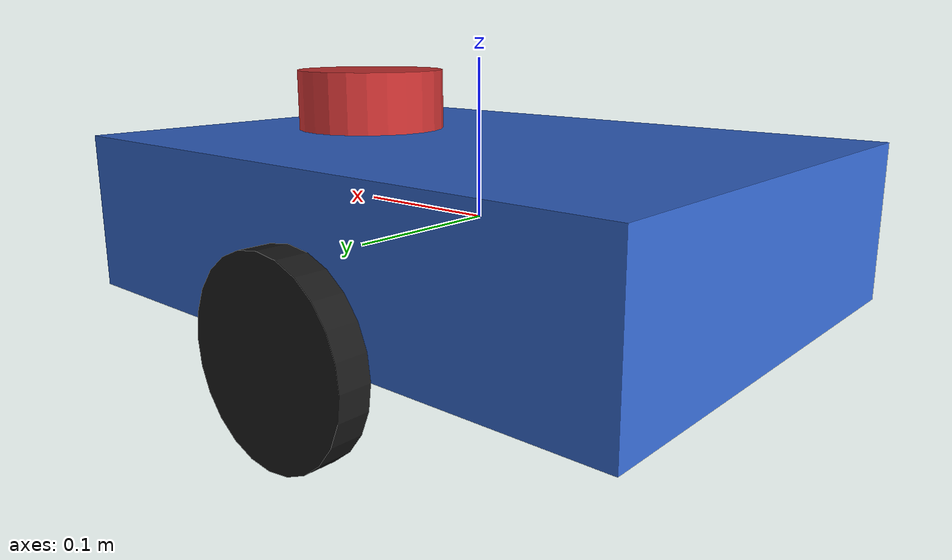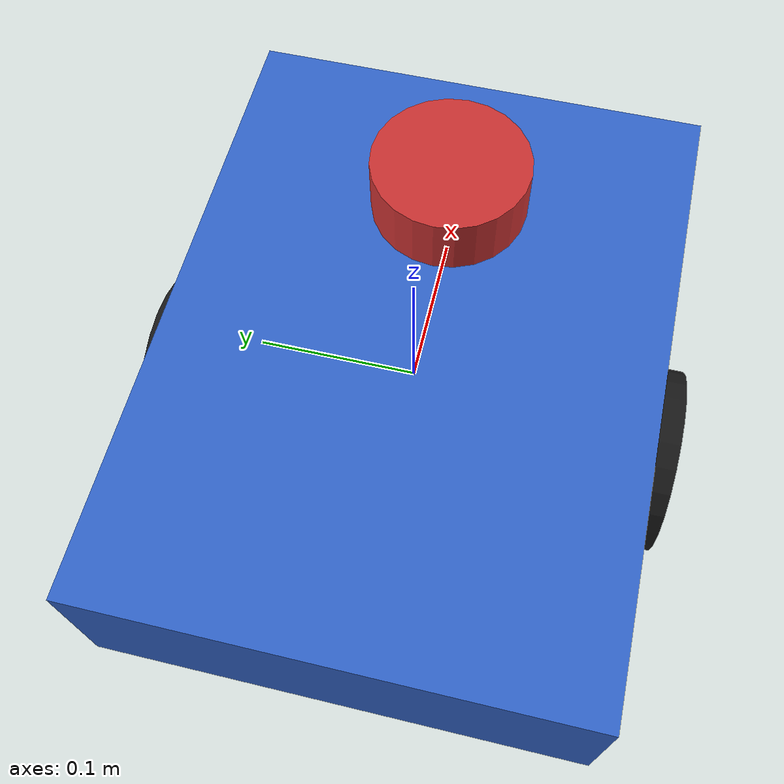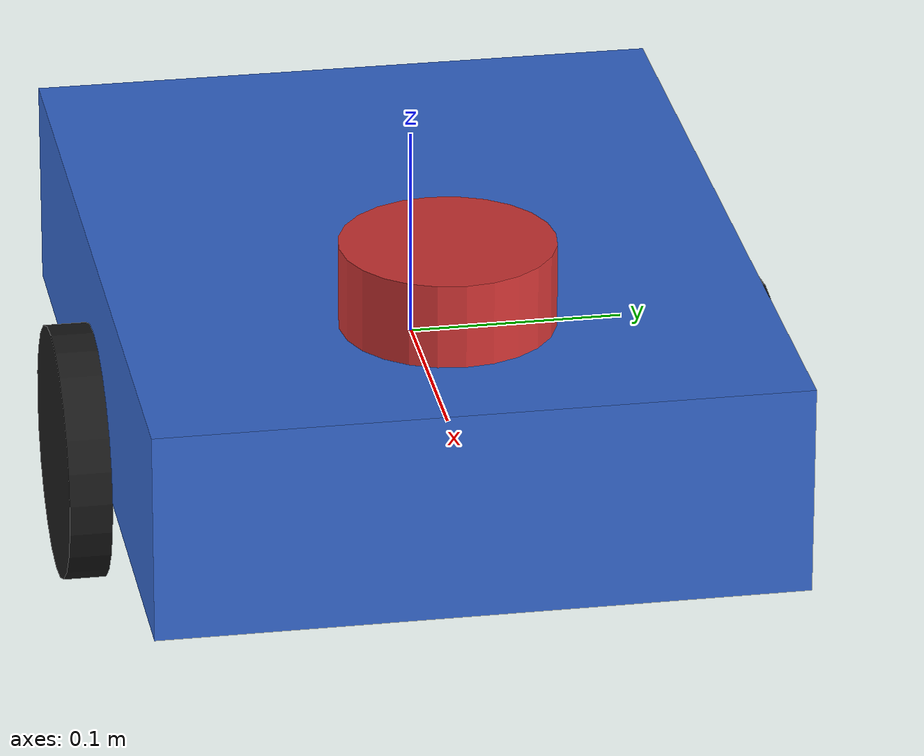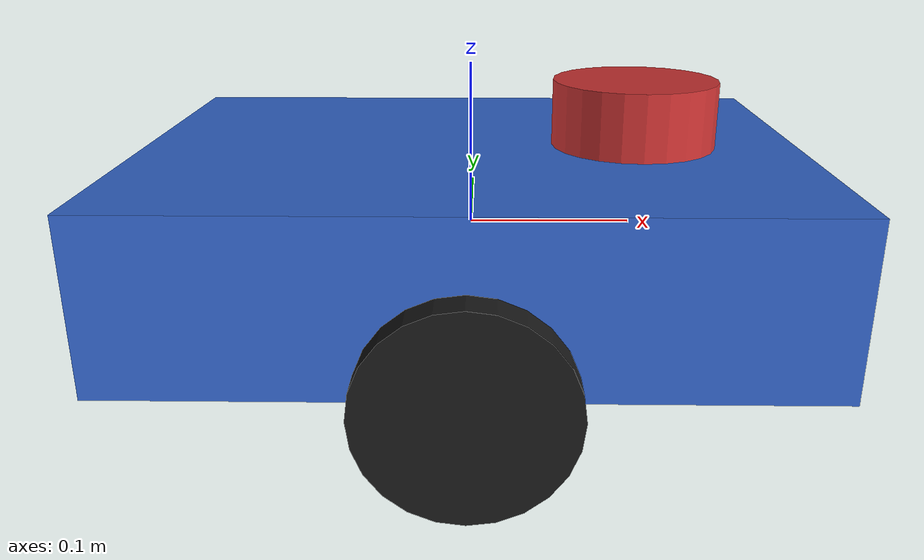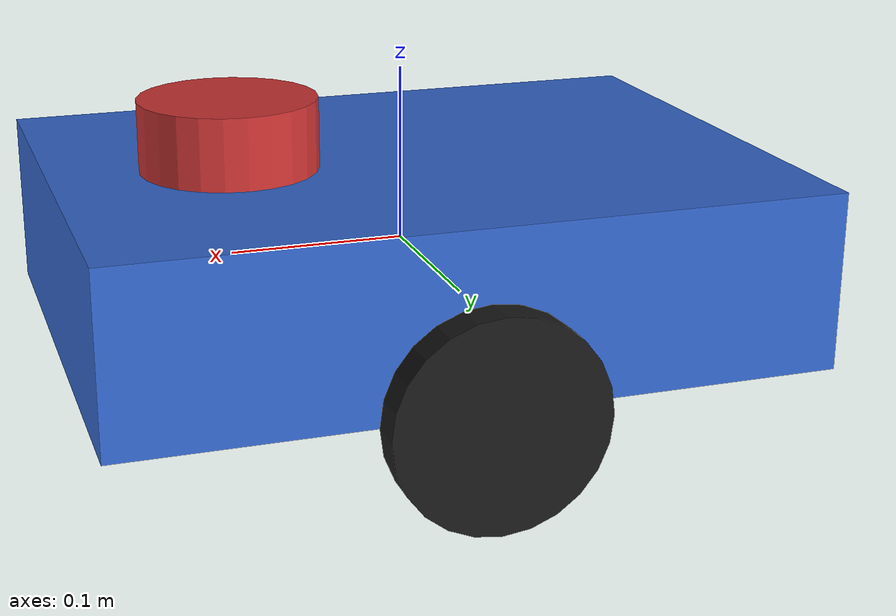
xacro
<?xml version="1.0"?>
<robot xmlns:xacro="http://www.ros.org/wiki/xacro" name="simple_bot">

  <!-- 색 정의 -->
  <material name="blue"><color rgba="0.2 0.4 0.8 1.0"/></material>
  <material name="red"><color rgba="0.8 0.2 0.2 1.0"/></material>
  <material name="black"><color rgba="0.1 0.1 0.1 1.0"/></material>

  <!-- 바퀴 매크로 -->
  <xacro:macro name="wheel" params="name y_offset">
    <link name="${name}">
      <visual>
        <geometry>
          <cylinder radius="0.06" length="0.02"/>
        </geometry>
        <material name="black"/>
      </visual>
    </link>
    <joint name="${name}_joint" type="continuous">
      <parent link="base_link"/>
      <child link="${name}"/>
      <origin xyz="0.0 ${y_offset} -0.05" rpy="-1.5708 0 0"/>
      <axis xyz="0 0 1"/>
    </joint>
  </xacro:macro>

  <!-- 몸체 -->
  <link name="base_link">
    <visual>
      <geometry><box size="0.4 0.3 0.1"/></geometry>
      <material name="blue"/>
    </visual>
  </link>

  <!-- 라이다 -->
  <link name="lidar_link">
    <visual>
      <geometry><cylinder radius="0.05" length="0.04"/></geometry>
      <material name="red"/>
    </visual>
  </link>
  <joint name="lidar_joint" type="fixed">
    <parent link="base_link"/>
    <child link="lidar_link"/>
    <origin xyz="0.1 0.0 0.07" rpy="0 0 0"/>
  </joint>

  <!-- 바퀴 매크로 호출 -->
  <xacro:wheel name="wheel_left" y_offset="0.16"/>
  <xacro:wheel name="wheel_right" y_offset="-0.16"/>

</robot>
